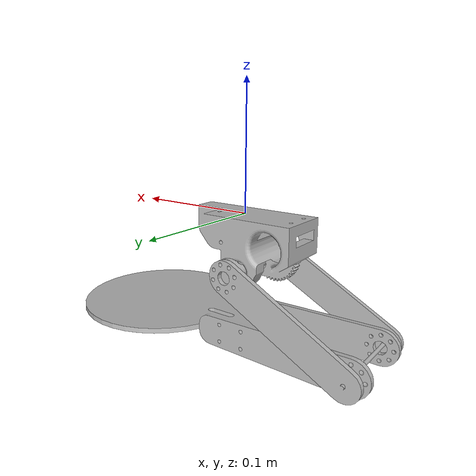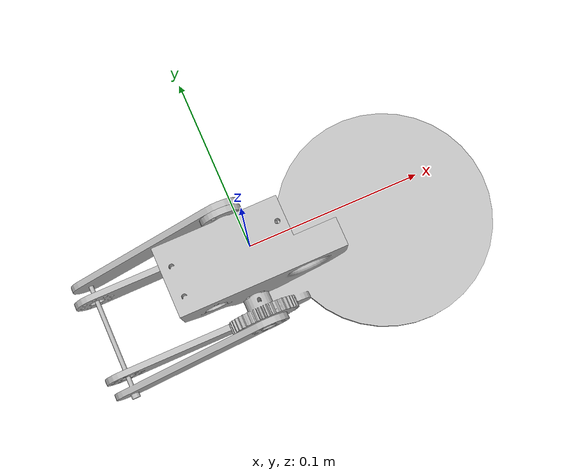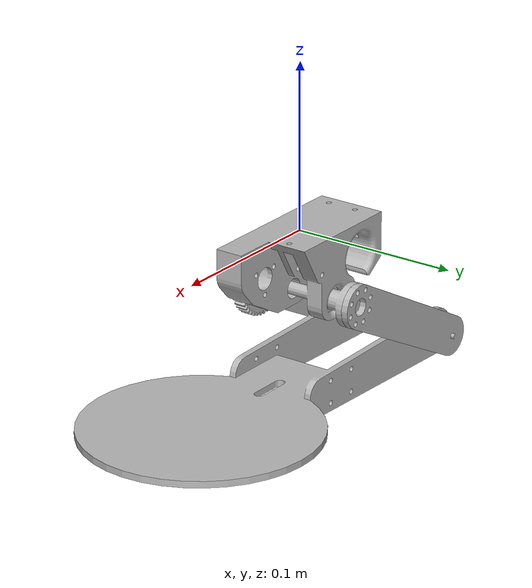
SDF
<sdf version="1.6">
  <model name='aerial_arm'>
      <link name='arm_base'>
        <inertial>
          <pose>-0.005893 -0.004374 -0.021439 0 -0 0</pose>
          <mass>0.103384</mass>
          <inertia>
            <ixx>3.43967e-05</ixx>
            <ixy>6.34394e-06</ixy>
            <ixz>1.45311e-07</ixz>
            <iyy>7.12984e-05</iyy>
            <iyz>-1.42696e-06</iyz>
            <izz>7.24776e-05</izz>
          </inertia>
        </inertial>
        <collision name='arm_base_collision'>
          <pose>0 0 0 0 -0 0</pose>
          <geometry>
            <mesh>
              <scale>1 1 1</scale>
              <uri>model://aerial_arm/meshes/arm_base.STL</uri>
            </mesh>
          </geometry>
          <max_contacts>10</max_contacts>
          <surface>
            <contact>
              <ode/>
            </contact>
            <bounce/>
            <friction>
              <torsional>
                <ode/>
              </torsional>
              <ode/>
            </friction>
          </surface>
        </collision>
        <visual name='arm_base_visual'>
          <pose>0 0 0 0 -0 0</pose>
          <geometry>
            <mesh>
              <scale>1 1 1</scale>
              <uri>model://aerial_arm/meshes/arm_base.STL</uri>
            </mesh>
          </geometry>
        </visual>
        <self_collide>0</self_collide>
        <enable_wind>0</enable_wind>
        <kinematic>0</kinematic>
      </link>
      <joint name='arm_0_joint' type='revolute'>
        <pose relative_to='arm_base'>-0.00732 -0.04125 -0.04 0 -0 0</pose>
        <parent>arm_base</parent>
        <child>arm_0</child>
        <axis>
          <xyz>0 -1 0</xyz>
          <limit>
            <lower>-1e+16</lower>
            <upper>1e+16</upper>
          </limit>
          <dynamics>
            <spring_reference>0</spring_reference>
            <spring_stiffness>0</spring_stiffness>
          </dynamics>
        </axis>
      </joint>
      <link name='arm_0'>
        <pose relative_to='arm_0_joint'>0 0 0 0 -0 0</pose>
        <inertial>
          <pose>-0.048821 0.038905 -0.026251 0 -0 0</pose>
          <mass>0.0244861</mass>
          <inertia>
            <ixx>8.03719e-06</ixx>
            <ixy>-1.89512e-20</ixy>
            <ixz>-1.1836e-05</ixz>
            <iyy>3.08373e-05</iyy>
            <iyz>-9.58674e-21</iyz>
            <izz>2.36851e-05</izz>
          </inertia>
        </inertial>
        <collision name='arm_0_collision'>
          <pose>0 0 0 0 -0 0</pose>
          <geometry>
            <mesh>
              <scale>1 1 1</scale>
              <uri>model://aerial_arm/meshes/arm_0.STL</uri>
            </mesh>
          </geometry>
          <max_contacts>10</max_contacts>
          <surface>
            <contact>
              <ode/>
            </contact>
            <bounce/>
            <friction>
              <torsional>
                <ode/>
              </torsional>
              <ode/>
            </friction>
          </surface>
        </collision>
        <visual name='arm_0_visual'>
          <pose>0 0 0 0 -0 0</pose>
          <geometry>
            <mesh>
              <scale>1 1 1</scale>
              <uri>model://aerial_arm/meshes/arm_0.STL</uri>
            </mesh>
          </geometry>
        </visual>
        <self_collide>0</self_collide>
        <enable_wind>0</enable_wind>
        <kinematic>0</kinematic>
      </link>
      <joint name='arm_1_joint' type='revolute'>
        <pose relative_to='arm_0'>-0.093359 0.01095 -0.0502 0 -0 0</pose>
        <parent>arm_0</parent>
        <child>arm_1</child>
        <axis>
          <xyz>0 -1 0</xyz>
          <limit>
            <lower>-1e+16</lower>
            <upper>1e+16</upper>
          </limit>
          <dynamics>
            <spring_reference>0</spring_reference>
            <spring_stiffness>0</spring_stiffness>
          </dynamics>
        </axis>
      </joint>
      <link name='arm_1'>
        <pose relative_to='arm_1_joint'>0 0 0 0 -0 0</pose>
        <inertial>
          <pose>0.146825 0.028 7.3e-05 0 -0 0</pose>
          <mass>0.0942066</mass>
          <inertia>
            <ixx>7.87755e-05</ixx>
            <ixy>-1.26309e-20</ixy>
            <ixz>-3.46545e-20</ixz>
            <iyy>0.000162859</iyy>
            <iyz>-6.40357e-21</iyz>
            <izz>0.000238545</izz>
          </inertia>
        </inertial>
        <collision name='arm_1_collision'>
          <pose>0 0 0 0 -0 0</pose>
          <geometry>
            <mesh>
              <scale>1 1 1</scale>
              <uri>model://aerial_arm/meshes/arm_1.STL</uri>
            </mesh>
          </geometry>
          <max_contacts>10</max_contacts>
          <surface>
            <contact>
              <ode/>
            </contact>
            <bounce/>
            <friction>
              <torsional>
                <ode/>
              </torsional>
              <ode/>
            </friction>
          </surface>
        </collision>
        <visual name='arm_1_visual'>
          <pose>0 0 0 0 -0 0</pose>
          <geometry>
            <mesh>
              <scale>1 1 1</scale>
              <uri>model://aerial_arm/meshes/arm_1.STL</uri>
            </mesh>
          </geometry>
        </visual>
        <self_collide>0</self_collide>
        <enable_wind>0</enable_wind>
        <kinematic>0</kinematic>
      </link>

    </model>
</sdf>
